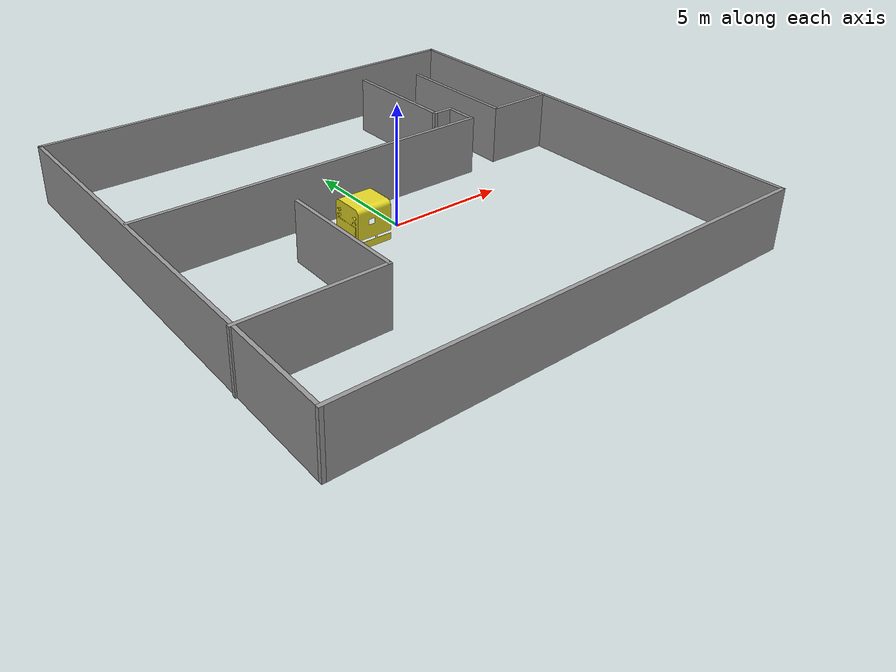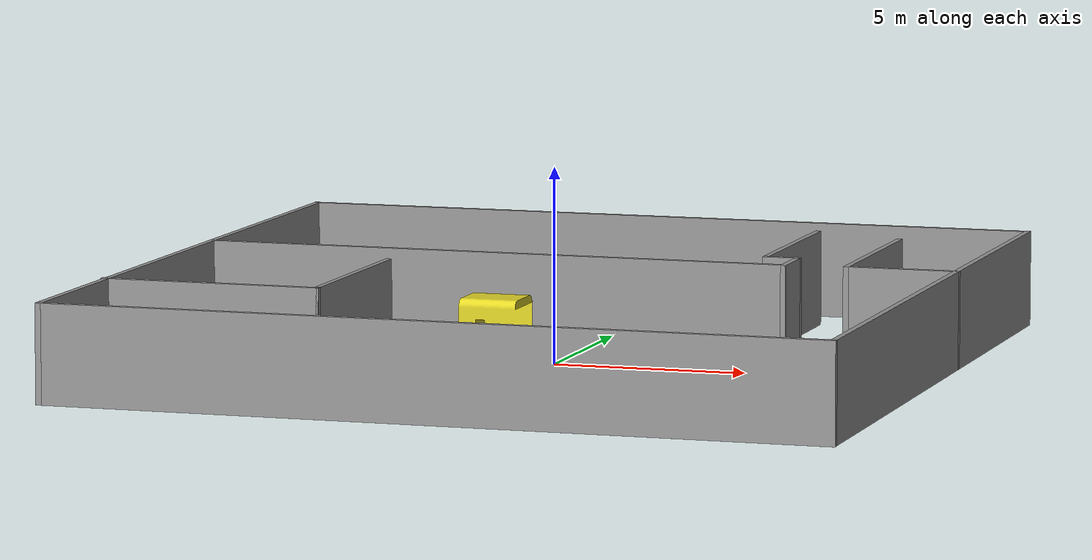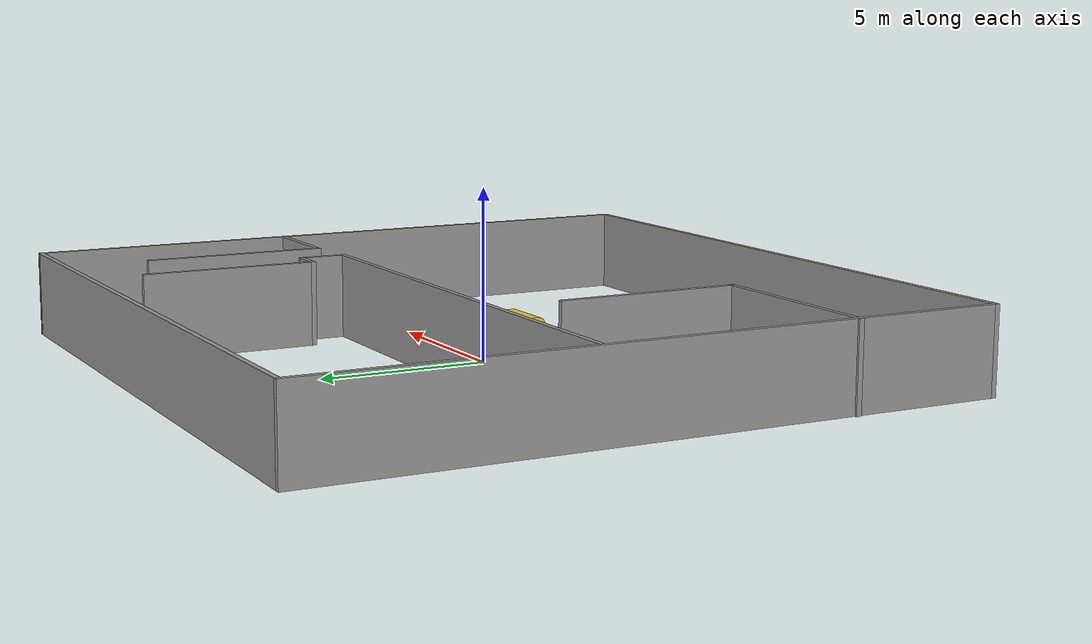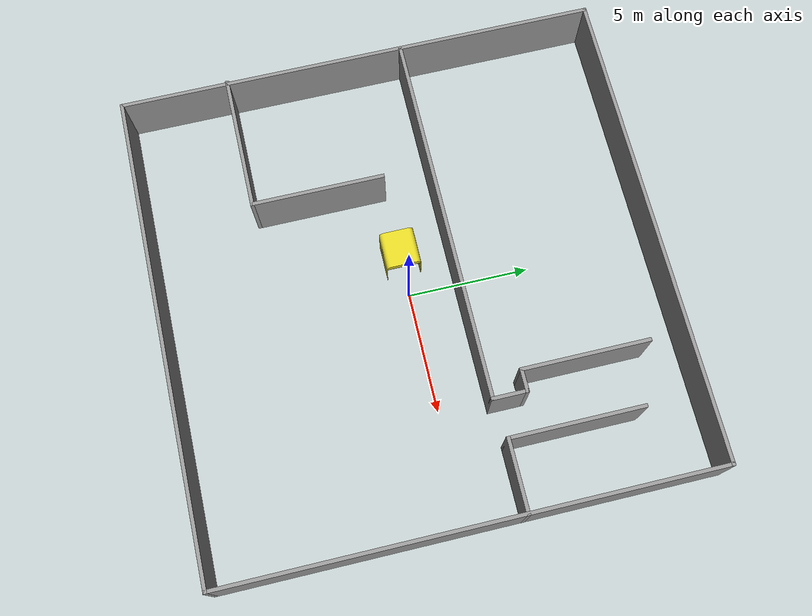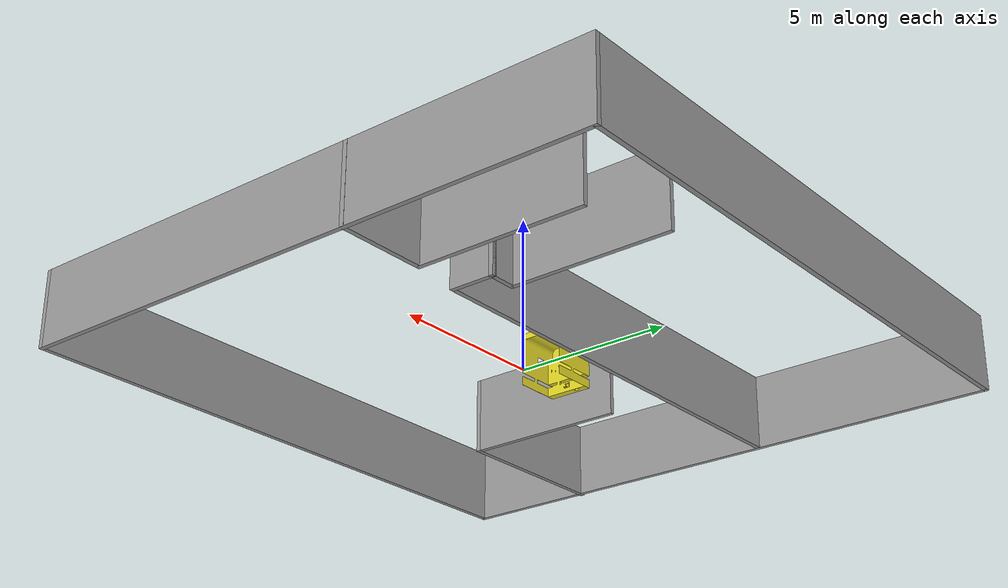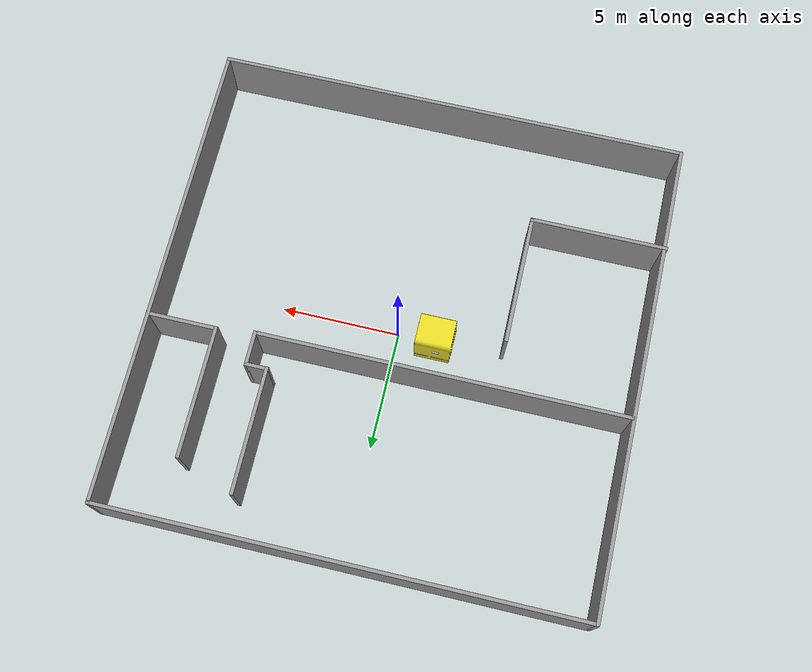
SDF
<?xml version='1.0'?>
<sdf version='1.6'>
  <model name='maze_AT200'>
    <pose frame=''>-0.078283 0.098984 0 0 -0 0</pose>
    <link name='Wall_0'>
      <collision name='Wall_0_Collision'>
        <geometry>
          <box>
            <size>20 0.15 2.5</size>
          </box>
        </geometry>
        <pose frame=''>0 0 1.25 0 -0 0</pose>
      </collision>
      <visual name='Wall_0_Visual'>
        <pose frame=''>0 0 1.25 0 -0 0</pose>
        <geometry>
          <box>
            <size>20 0.15 2.5</size>
          </box>
        </geometry>
        <material>
          <script>
            <uri>file://media/materials/scripts/gazebo.material</uri>
            <name>Gazebo/Grey</name>
          </script>
          <ambient>1 1 1 1</ambient>
        </material>
      </visual>
      <pose frame=''>0.030536 9.925 0 0 -0 0</pose>
    </link>
    <link name='Wall_1'>
      <collision name='Wall_1_Collision'>
        <geometry>
          <box>
            <size>20 0.15 2.5</size>
          </box>
        </geometry>
        <pose frame=''>0 0 1.25 0 -0 0</pose>
      </collision>
      <visual name='Wall_1_Visual'>
        <pose frame=''>0 0 1.25 0 -0 0</pose>
        <geometry>
          <box>
            <size>20 0.15 2.5</size>
          </box>
        </geometry>
        <material>
          <script>
            <uri>file://media/materials/scripts/gazebo.material</uri>
            <name>Gazebo/Grey</name>
          </script>
          <ambient>1 1 1 1</ambient>
        </material>
      </visual>
      <pose frame=''>9.95554 0 0 0 0 -1.5708</pose>
    </link>
    <link name='Wall_2'>
      <collision name='Wall_2_Collision'>
        <geometry>
          <box>
            <size>20 0.15 2.5</size>
          </box>
        </geometry>
        <pose frame=''>0 0 1.25 0 -0 0</pose>
      </collision>
      <visual name='Wall_2_Visual'>
        <pose frame=''>0 0 1.25 0 -0 0</pose>
        <geometry>
          <box>
            <size>20 0.15 2.5</size>
          </box>
        </geometry>
        <material>
          <script>
            <uri>file://media/materials/scripts/gazebo.material</uri>
            <name>Gazebo/Grey</name>
          </script>
          <ambient>1 1 1 1</ambient>
        </material>
      </visual>
      <pose frame=''>0.030536 -9.925 0 0 -0 3.14159</pose>
    </link>
    <link name='Wall_24'>
      <collision name='Wall_24_Collision'>
        <geometry>
          <box>
            <size>1.0 0.15 2.5</size>
          </box>
        </geometry>
        <pose frame=''>0 0 1.25 0 -0 0</pose>
      </collision>
      <visual name='Wall_24_Visual'>
        <pose frame=''>0 0 1.25 0 -0 0</pose>
        <geometry>
          <box>
            <size>1.0 0.15 2.5</size>
          </box>
        </geometry>
        <material>
          <script>
            <uri>file://media/materials/scripts/gazebo.material</uri>
            <name>Gazebo/Grey</name>
          </script>
          <ambient>1 1 1 1</ambient>
        </material>
      </visual>
      <pose frame=''>5.10089 3.21906 0 0 -0 3.14159</pose>
    </link>
    <link name='Wall_25'>
      <collision name='Wall_25_Collision'>
        <geometry>
          <box>
            <size>5.25 0.15 2.5</size>
          </box>
        </geometry>
        <pose frame=''>0 0 1.25 0 -0 0</pose>
      </collision>
      <visual name='Wall_25_Visual'>
        <pose frame=''>0 0 1.25 0 -0 0</pose>
        <geometry>
          <box>
            <size>5.25 0.15 2.5</size>
          </box>
        </geometry>
        <material>
          <script>
            <uri>file://media/materials/scripts/gazebo.material</uri>
            <name>Gazebo/Grey</name>
          </script>
          <ambient>1 1 1 1</ambient>
        </material>
      </visual>
      <pose frame=''>4.67589 5.76906 0 0 -0 1.5708</pose>
    </link>
    <link name='Wall_27'>
      <collision name='Wall_27_Collision'>
        <geometry>
          <box>
            <size>5.5 0.15 2.5</size>
          </box>
        </geometry>
        <pose frame=''>0 0 1.25 0 -0 0</pose>
      </collision>
      <visual name='Wall_27_Visual'>
        <pose frame=''>0 0 1.25 0 -0 0</pose>
        <geometry>
          <box>
            <size>5.5 0.15 2.5</size>
          </box>
        </geometry>
        <material>
          <script>
            <uri>file://media/materials/scripts/gazebo.material</uri>
            <name>Gazebo/Grey</name>
          </script>
          <ambient>1 1 1 1</ambient>
        </material>
      </visual>
      <pose frame=''>7.10914 4.73454 0 0 0 -1.5708</pose>
    </link>
    <link name='Wall_28'>
      <collision name='Wall_28_Collision'>
        <geometry>
          <box>
            <size>3 0.15 2.5</size>
          </box>
        </geometry>
        <pose frame=''>0 0 1.25 0 -0 0</pose>
      </collision>
      <visual name='Wall_28_Visual'>
        <pose frame=''>0 0 1.25 0 -0 0</pose>
        <geometry>
          <box>
            <size>3 0.15 2.5</size>
          </box>
        </geometry>
        <material>
          <script>
            <uri>file://media/materials/scripts/gazebo.material</uri>
            <name>Gazebo/Grey</name>
          </script>
          <ambient>1 1 1 1</ambient>
        </material>
      </visual>
      <pose frame=''>8.53414 2.05954 0 0 -0 0</pose>
    </link>
    <link name='Wall_3'>
      <collision name='Wall_3_Collision'>
        <geometry>
          <box>
            <size>20 0.15 2.5</size>
          </box>
        </geometry>
        <pose frame=''>0 0 1.25 0 -0 0</pose>
      </collision>
      <visual name='Wall_3_Visual'>
        <pose frame=''>0 0 1.25 0 -0 0</pose>
        <geometry>
          <box>
            <size>20 0.15 2.5</size>
          </box>
        </geometry>
        <material>
          <script>
            <uri>file://media/materials/scripts/gazebo.material</uri>
            <name>Gazebo/Grey</name>
          </script>
          <ambient>1 1 1 1</ambient>
        </material>
      </visual>
      <pose frame=''>-9.89446 0 0 0 -0 1.5708</pose>
    </link>
    <link name='Wall_30'>
      <collision name='Wall_30_Collision'>
        <geometry>
          <box>
            <size>5.5 0.15 2.5</size>
          </box>
        </geometry>
        <pose frame=''>0 0 1.25 0 -0 0</pose>
      </collision>
      <visual name='Wall_30_Visual'>
        <pose frame=''>0 0 1.25 0 -0 0</pose>
        <geometry>
          <box>
            <size>5.5 0.15 2.5</size>
          </box>
        </geometry>
        <material>
          <script>
            <uri>file://media/materials/scripts/gazebo.material</uri>
            <name>Gazebo/Grey</name>
          </script>
          <ambient>1 1 1 1</ambient>
        </material>
      </visual>
      <pose frame=''>-4.35914 -2.82889 0 0 0 -1.5708</pose>
    </link>
    <link name='Wall_31'>
      <collision name='Wall_31_Collision'>
        <geometry>
          <box>
            <size>5.75 0.15 2.5</size>
          </box>
        </geometry>
        <pose frame=''>0 0 1.25 0 -0 0</pose>
      </collision>
      <visual name='Wall_31_Visual'>
        <pose frame=''>0 0 1.25 0 -0 0</pose>
        <geometry>
          <box>
            <size>5.75 0.15 2.5</size>
          </box>
        </geometry>
        <material>
          <script>
            <uri>file://media/materials/scripts/gazebo.material</uri>
            <name>Gazebo/Grey</name>
          </script>
          <ambient>1 1 1 1</ambient>
        </material>
      </visual>
      <pose frame=''>-7.15914 -5.50389 0 0 -0 3.14159</pose>
    </link>
    <link name='Wall_5'>
      <collision name='Wall_5_Collision'>
        <geometry>
          <box>
            <size>15.5 0.15 2.5</size>
          </box>
        </geometry>
        <pose frame=''>0 0 1.25 0 -0 0</pose>
      </collision>
      <visual name='Wall_5_Visual'>
        <pose frame=''>0 0 1.25 0 -0 0</pose>
        <geometry>
          <box>
            <size>15.5 0.15 2.5</size>
          </box>
        </geometry>
        <material>
          <script>
            <uri>file://media/materials/scripts/gazebo.material</uri>
            <name>Gazebo/Grey</name>
          </script>
          <ambient>1 1 1 1</ambient>
        </material>
      </visual>
      <pose frame=''>-2.14911 1.86906 0 0 0 0</pose>
    </link>
    <link name='Wall_6'>
      <collision name='Wall_6_Collision'>
        <geometry>
          <box>
            <size>1.5 0.15 2.5</size>
          </box>
        </geometry>
        <pose frame=''>0 0 1.25 0 -0 0</pose>
      </collision>
      <visual name='Wall_6_Visual'>
        <pose frame=''>0 0 1.25 0 -0 0</pose>
        <geometry>
          <box>
            <size>1.5 0.15 2.5</size>
          </box>
        </geometry>
        <material>
          <script>
            <uri>file://media/materials/scripts/gazebo.material</uri>
            <name>Gazebo/Grey</name>
          </script>
          <ambient>1 1 1 1</ambient>
        </material>
      </visual>
      <pose frame=''>5.52589 2.54406 0 0 -0 1.5708</pose>
    </link>

    <link name='Charging Station'>
      <pose>-1.5 -0.1 0 0 0 1.57079632679</pose>
      <collision name='Charging_Station_Collision'>
        <pose frame=''>0 0 0 0 0 0</pose>
        <geometry>
          <mesh>
            <uri>model://Charging_Station_AT200/meshes/dock_reflectivetape.STL</uri>
 <!--Dock_updated.STL -->
          </mesh>
        </geometry>
      </collision>
      <visual name='Charging_Station_Visual'>
        <pose frame=''>0 0 0 0 0 0</pose>
        <geometry>
          <mesh>
            <uri>model://Charging_Station_AT200/meshes/dock_reflectivetape.STL</uri>
 <!--Dock_updated.STL -->
          </mesh>
        </geometry>
        <material>
          <script>
            <uri>file://media/materials/scripts/gazebo.material</uri>
            <name>Gazebo/Yellow</name>
          </script>
        </material>
      </visual>
    </link>

    <static>1</static>
  </model>
</sdf>
